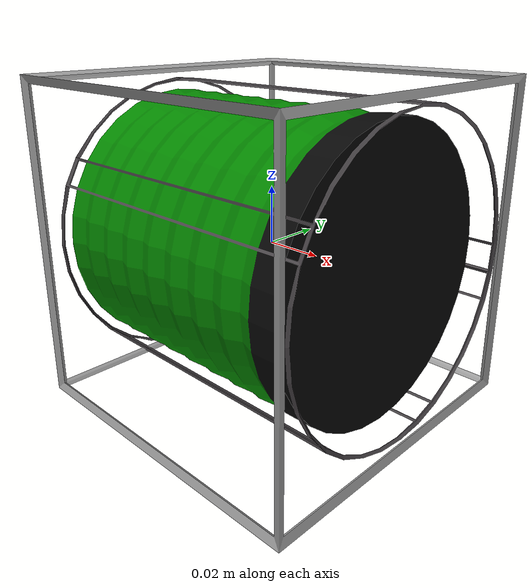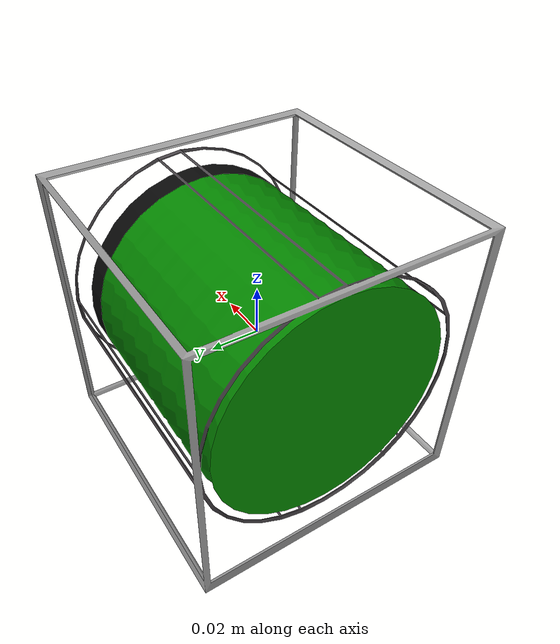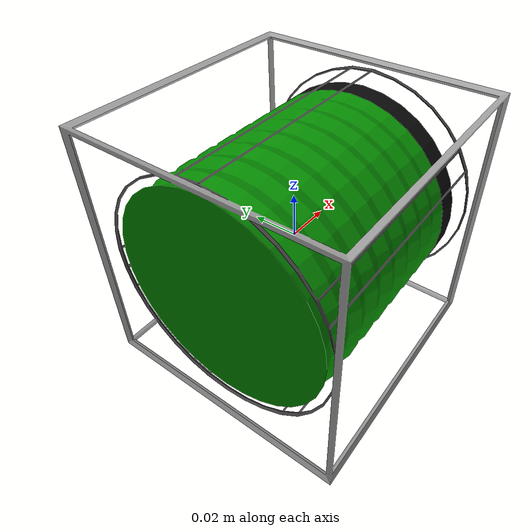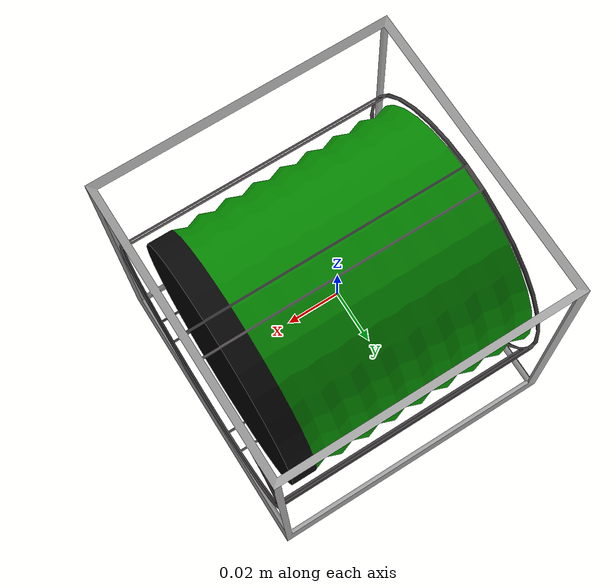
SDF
<?xml version="1.0" ?>
<sdf version="1.6">
  <model name="assembly_pump_green_ariac">
    <static>false</static>
    <link name="link">
      <inertial>
        <pose>0 0 0.005 0 0 0</pose>
        <mass>0.5</mass>
        <inertia>
          <ixx>0.001</ixx>
          <ixy>0</ixy>
          <ixz>0</ixz>
          <iyy>0.001</iyy>
          <iyz>0</iyz>
          <izz>0.001</izz>
        </inertia>
      </inertial>

      <collision name="collision">
        <geometry>
          <box>
            <size>0.11 0.11 0.11</size>
          </box>
        </geometry>
        <surface>
          <contact>
            <ode>
              <max_vel>0.1</max_vel>
              <min_depth>0.001</min_depth>
            </ode>
          </contact>
        </surface>
      </collision>
      <visual name="visual">
         <geometry>
           <mesh>
             <uri>model://assembly_pump_green_ariac/meshes/assembly_pump_part_green.dae</uri>
             <scale>0.9 0.9 0.9</scale>
           </mesh>
         </geometry>
       </visual>
    </link>
  </model>
</sdf>
